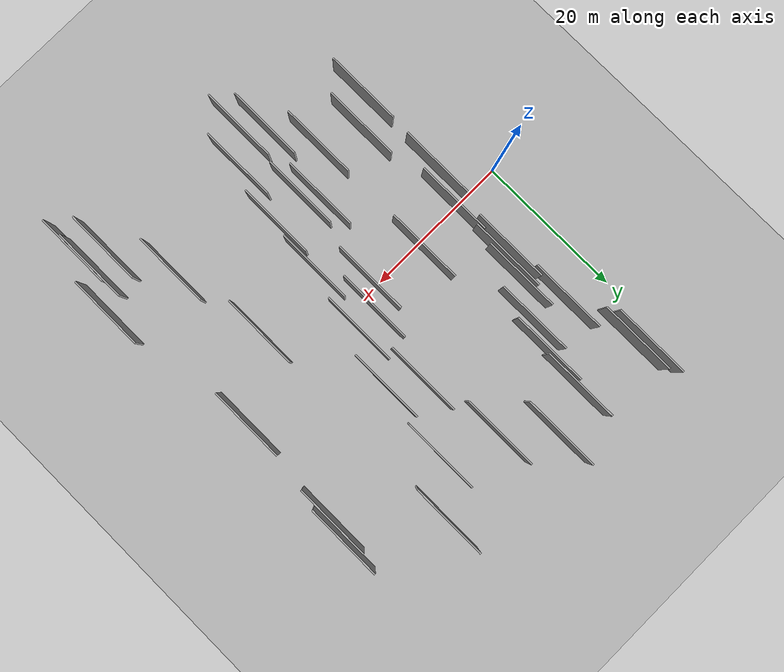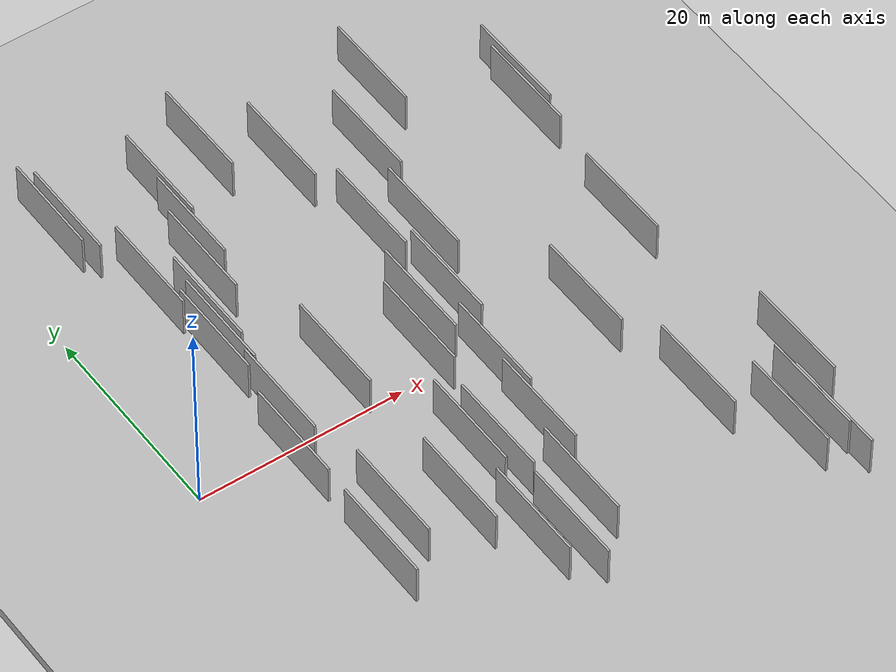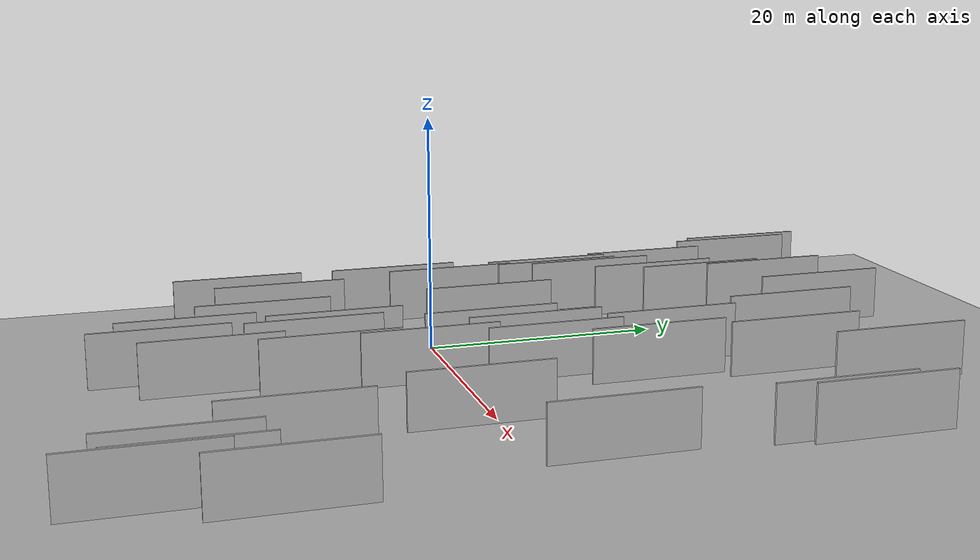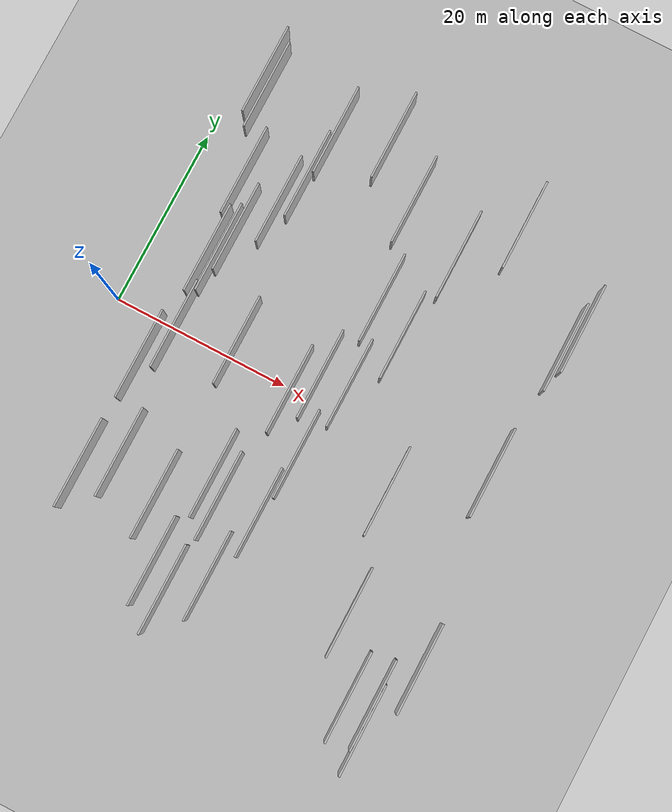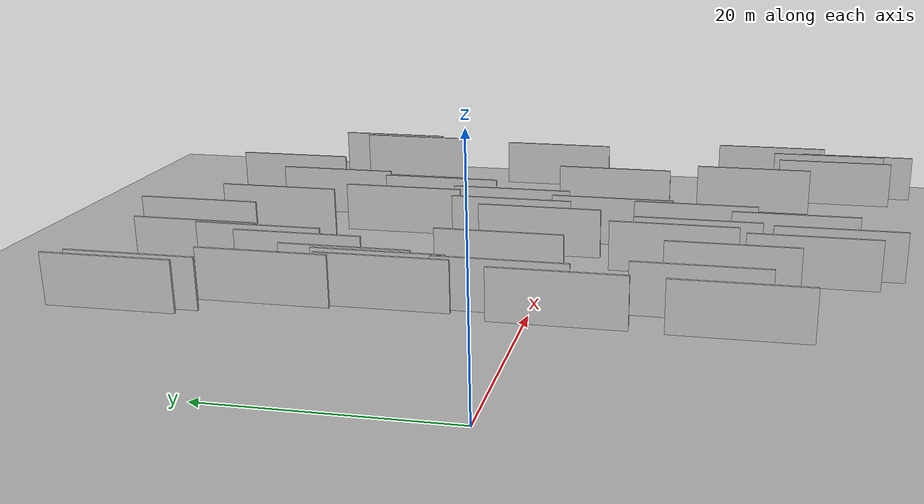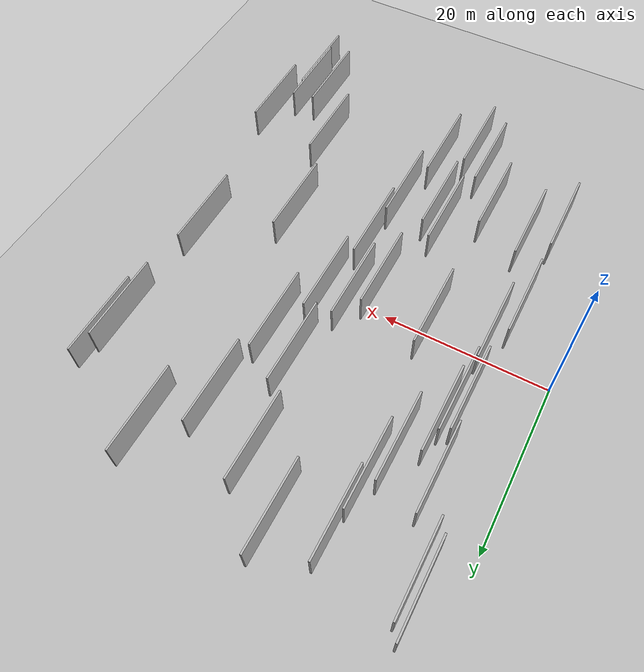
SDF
<?xml version="1.0" encoding="utf-8"?>

<sdf version="1.6">

   <world name="default">

      <gui fullscreen="0">

         <camera name="user_camera">

            <pose>-15 0 4.57585 0 0 0</pose>

            <view_controller>orbit</view_controller>

         </camera>

      </gui>

      <scene>

         <sky>

           <clouds>

             <speed>12</speed>

           </clouds>

         </sky>

         <ambient>0.4 0.4 0.4 1</ambient>

         <background>0.7 0.7 0.7 1</background>

         <shadows>1</shadows>

      </scene>

      <gravity>0 0 -9.8066</gravity>

      <magnetic_field>6e-06 2.3e-05 -4.2e-05</magnetic_field>

      <physics default="0" name="default_physics" type="ode">

         <ode>

            <solver>

               <type>quick</type>

               <iters>10</iters>

               <sor>1.0</sor>

               <use_dynamic_moi_rescaling>0</use_dynamic_moi_rescaling>

            </solver>

            <constraints>

               <cfm>0</cfm>

               <erp>0.2</erp>

               <contact_max_correcting_vel>100</contact_max_correcting_vel>

               <contact_surface_layer>0.001</contact_surface_layer>

            </constraints>

         </ode>

         <max_step_size>0.004</max_step_size>

         <real_time_factor>1</real_time_factor>

         <real_time_update_rate>250</real_time_update_rate>

      </physics>

      <light name="sun" type="directional">

         <cast_shadows>1</cast_shadows>

         <pose>0 0 10 0 0 0</pose>

         <diffuse>0.8 0.8 0.8 1</diffuse>

         <specular>0.2 0.2 0.2 1</specular>

         <attenuation>

            <range>1000</range>

            <constant>0.9</constant>

            <linear>0.01</linear>

            <quadratic>0.001</quadratic>

         </attenuation>

         <direction>-0.5 0.1 -0.9</direction>

      </light>

      <include>

         <name>ground_plane_1</name>

         <uri>model://HANNAS_ground_plane</uri>

         <pose>0 0 0  0 0 0</pose>

      </include>

      <include>

         <name>ground_plane_2</name>

         <uri>model://HANNAS_ground_plane</uri>

         <pose>100 0 0  0 0 0</pose>

      </include>

      <model name="HANNAS_wall_1">

         <static>1</static>

         <pose frame="">7.8358 -0.2921 5.0 0.000000 0.000000 1.570796</pose>

         <link name="link">

            <pose frame="">0 0 2.00 0 0 0</pose>

            <collision name="collision">

               <geometry>

                  <box>

                     <size>10.00 0.2 4.00</size>

                  </box>

               </geometry>

               <max_contacts>10</max_contacts>

               <surface>

                  <contact>

                     <ode/>

                  </contact>

                  <bounce/>

                  <friction>

                     <torsional>

                        <ode/>

                     </torsional>

                     <ode/>

                  </friction>

               </surface>

            </collision>

            <visual name="visual">

               <cast_shadows>0</cast_shadows>

               <geometry>

                  <box>

                     <size>10.00 0.2 4.00</size>

                  </box>

               </geometry>

               <material>

                  <script>

                     <uri>model://HANNAS_wall/materials/scripts</uri>

                     <uri>model://HANNAS_wall/materials/textures</uri>

                     <name>vrc/HANNAS_wall</name>

                  </script>

               </material>

            </visual>

            <self_collide>0</self_collide>

            <enable_wind>0</enable_wind>

            <kinematic>0</kinematic>

         </link>

      </model>

      <model name="HANNAS_wall_2">

         <static>1</static>

         <pose frame="">23.2628 2.0227 5.0 0.000000 0.000000 1.570796</pose>

         <link name="link">

            <pose frame="">0 0 2.00 0 0 0</pose>

            <collision name="collision">

               <geometry>

                  <box>

                     <size>10.00 0.2 4.00</size>

                  </box>

               </geometry>

               <max_contacts>10</max_contacts>

               <surface>

                  <contact>

                     <ode/>

                  </contact>

                  <bounce/>

                  <friction>

                     <torsional>

                        <ode/>

                     </torsional>

                     <ode/>

                  </friction>

               </surface>

            </collision>

            <visual name="visual">

               <cast_shadows>0</cast_shadows>

               <geometry>

                  <box>

                     <size>10.00 0.2 4.00</size>

                  </box>

               </geometry>

               <material>

                  <script>

                     <uri>model://HANNAS_wall/materials/scripts</uri>

                     <uri>model://HANNAS_wall/materials/textures</uri>

                     <name>vrc/HANNAS_wall</name>

                  </script>

               </material>

            </visual>

            <self_collide>0</self_collide>

            <enable_wind>0</enable_wind>

            <kinematic>0</kinematic>

         </link>

      </model>

      <model name="HANNAS_wall_3">

         <static>1</static>

         <pose frame="">43.1729 -24.5229 5.0 0.000000 0.000000 1.570796</pose>

         <link name="link">

            <pose frame="">0 0 2.00 0 0 0</pose>

            <collision name="collision">

               <geometry>

                  <box>

                     <size>10.00 0.2 4.00</size>

                  </box>

               </geometry>

               <max_contacts>10</max_contacts>

               <surface>

                  <contact>

                     <ode/>

                  </contact>

                  <bounce/>

                  <friction>

                     <torsional>

                        <ode/>

                     </torsional>

                     <ode/>

                  </friction>

               </surface>

            </collision>

            <visual name="visual">

               <cast_shadows>0</cast_shadows>

               <geometry>

                  <box>

                     <size>10.00 0.2 4.00</size>

                  </box>

               </geometry>

               <material>

                  <script>

                     <uri>model://HANNAS_wall/materials/scripts</uri>

                     <uri>model://HANNAS_wall/materials/textures</uri>

                     <name>vrc/HANNAS_wall</name>

                  </script>

               </material>

            </visual>

            <self_collide>0</self_collide>

            <enable_wind>0</enable_wind>

            <kinematic>0</kinematic>

         </link>

      </model>

      <model name="HANNAS_wall_4">

         <static>1</static>

         <pose frame="">6.6252 16.9107 5.0 0.000000 0.000000 1.570796</pose>

         <link name="link">

            <pose frame="">0 0 2.00 0 0 0</pose>

            <collision name="collision">

               <geometry>

                  <box>

                     <size>10.00 0.2 4.00</size>

                  </box>

               </geometry>

               <max_contacts>10</max_contacts>

               <surface>

                  <contact>

                     <ode/>

                  </contact>

                  <bounce/>

                  <friction>

                     <torsional>

                        <ode/>

                     </torsional>

                     <ode/>

                  </friction>

               </surface>

            </collision>

            <visual name="visual">

               <cast_shadows>0</cast_shadows>

               <geometry>

                  <box>

                     <size>10.00 0.2 4.00</size>

                  </box>

               </geometry>

               <material>

                  <script>

                     <uri>model://HANNAS_wall/materials/scripts</uri>

                     <uri>model://HANNAS_wall/materials/textures</uri>

                     <name>vrc/HANNAS_wall</name>

                  </script>

               </material>

            </visual>

            <self_collide>0</self_collide>

            <enable_wind>0</enable_wind>

            <kinematic>0</kinematic>

         </link>

      </model>

      <model name="HANNAS_wall_5">

         <static>1</static>

         <pose frame="">24.9010 -6.1716 5.0 0.000000 0.000000 1.570796</pose>

         <link name="link">

            <pose frame="">0 0 2.00 0 0 0</pose>

            <collision name="collision">

               <geometry>

                  <box>

                     <size>10.00 0.2 4.00</size>

                  </box>

               </geometry>

               <max_contacts>10</max_contacts>

               <surface>

                  <contact>

                     <ode/>

                  </contact>

                  <bounce/>

                  <friction>

                     <torsional>

                        <ode/>

                     </torsional>

                     <ode/>

                  </friction>

               </surface>

            </collision>

            <visual name="visual">

               <cast_shadows>0</cast_shadows>

               <geometry>

                  <box>

                     <size>10.00 0.2 4.00</size>

                  </box>

               </geometry>

               <material>

                  <script>

                     <uri>model://HANNAS_wall/materials/scripts</uri>

                     <uri>model://HANNAS_wall/materials/textures</uri>

                     <name>vrc/HANNAS_wall</name>

                  </script>

               </material>

            </visual>

            <self_collide>0</self_collide>

            <enable_wind>0</enable_wind>

            <kinematic>0</kinematic>

         </link>

      </model>

      <model name="HANNAS_wall_6">

         <static>1</static>

         <pose frame="">8.1049 8.6936 5.0 0.000000 0.000000 1.570796</pose>

         <link name="link">

            <pose frame="">0 0 2.00 0 0 0</pose>

            <collision name="collision">

               <geometry>

                  <box>

                     <size>10.00 0.2 4.00</size>

                  </box>

               </geometry>

               <max_contacts>10</max_contacts>

               <surface>

                  <contact>

                     <ode/>

                  </contact>

                  <bounce/>

                  <friction>

                     <torsional>

                        <ode/>

                     </torsional>

                     <ode/>

                  </friction>

               </surface>

            </collision>

            <visual name="visual">

               <cast_shadows>0</cast_shadows>

               <geometry>

                  <box>

                     <size>10.00 0.2 4.00</size>

                  </box>

               </geometry>

               <material>

                  <script>

                     <uri>model://HANNAS_wall/materials/scripts</uri>

                     <uri>model://HANNAS_wall/materials/textures</uri>

                     <name>vrc/HANNAS_wall</name>

                  </script>

               </material>

            </visual>

            <self_collide>0</self_collide>

            <enable_wind>0</enable_wind>

            <kinematic>0</kinematic>

         </link>

      </model>

      <model name="HANNAS_wall_7">

         <static>1</static>

         <pose frame="">14.2185 1.1450 5.0 0.000000 0.000000 1.570796</pose>

         <link name="link">

            <pose frame="">0 0 2.00 0 0 0</pose>

            <collision name="collision">

               <geometry>

                  <box>

                     <size>10.00 0.2 4.00</size>

                  </box>

               </geometry>

               <max_contacts>10</max_contacts>

               <surface>

                  <contact>

                     <ode/>

                  </contact>

                  <bounce/>

                  <friction>

                     <torsional>

                        <ode/>

                     </torsional>

                     <ode/>

                  </friction>

               </surface>

            </collision>

            <visual name="visual">

               <cast_shadows>0</cast_shadows>

               <geometry>

                  <box>

                     <size>10.00 0.2 4.00</size>

                  </box>

               </geometry>

               <material>

                  <script>

                     <uri>model://HANNAS_wall/materials/scripts</uri>

                     <uri>model://HANNAS_wall/materials/textures</uri>

                     <name>vrc/HANNAS_wall</name>

                  </script>

               </material>

            </visual>

            <self_collide>0</self_collide>

            <enable_wind>0</enable_wind>

            <kinematic>0</kinematic>

         </link>

      </model>

      <model name="HANNAS_wall_8">

         <static>1</static>

         <pose frame="">4.4644 25.9087 5.0 0.000000 0.000000 1.570796</pose>

         <link name="link">

            <pose frame="">0 0 2.00 0 0 0</pose>

            <collision name="collision">

               <geometry>

                  <box>

                     <size>10.00 0.2 4.00</size>

                  </box>

               </geometry>

               <max_contacts>10</max_contacts>

               <surface>

                  <contact>

                     <ode/>

                  </contact>

                  <bounce/>

                  <friction>

                     <torsional>

                        <ode/>

                     </torsional>

                     <ode/>

                  </friction>

               </surface>

            </collision>

            <visual name="visual">

               <cast_shadows>0</cast_shadows>

               <geometry>

                  <box>

                     <size>10.00 0.2 4.00</size>

                  </box>

               </geometry>

               <material>

                  <script>

                     <uri>model://HANNAS_wall/materials/scripts</uri>

                     <uri>model://HANNAS_wall/materials/textures</uri>

                     <name>vrc/HANNAS_wall</name>

                  </script>

               </material>

            </visual>

            <self_collide>0</self_collide>

            <enable_wind>0</enable_wind>

            <kinematic>0</kinematic>

         </link>

      </model>

      <model name="HANNAS_wall_9">

         <static>1</static>

         <pose frame="">43.0906 1.2742 5.0 0.000000 0.000000 1.570796</pose>

         <link name="link">

            <pose frame="">0 0 2.00 0 0 0</pose>

            <collision name="collision">

               <geometry>

                  <box>

                     <size>10.00 0.2 4.00</size>

                  </box>

               </geometry>

               <max_contacts>10</max_contacts>

               <surface>

                  <contact>

                     <ode/>

                  </contact>

                  <bounce/>

                  <friction>

                     <torsional>

                        <ode/>

                     </torsional>

                     <ode/>

                  </friction>

               </surface>

            </collision>

            <visual name="visual">

               <cast_shadows>0</cast_shadows>

               <geometry>

                  <box>

                     <size>10.00 0.2 4.00</size>

                  </box>

               </geometry>

               <material>

                  <script>

                     <uri>model://HANNAS_wall/materials/scripts</uri>

                     <uri>model://HANNAS_wall/materials/textures</uri>

                     <name>vrc/HANNAS_wall</name>

                  </script>

               </material>

            </visual>

            <self_collide>0</self_collide>

            <enable_wind>0</enable_wind>

            <kinematic>0</kinematic>

         </link>

      </model>

      <model name="HANNAS_wall_10">

         <static>1</static>

         <pose frame="">29.9802 19.3525 5.0 0.000000 0.000000 1.570796</pose>

         <link name="link">

            <pose frame="">0 0 2.00 0 0 0</pose>

            <collision name="collision">

               <geometry>

                  <box>

                     <size>10.00 0.2 4.00</size>

                  </box>

               </geometry>

               <max_contacts>10</max_contacts>

               <surface>

                  <contact>

                     <ode/>

                  </contact>

                  <bounce/>

                  <friction>

                     <torsional>

                        <ode/>

                     </torsional>

                     <ode/>

                  </friction>

               </surface>

            </collision>

            <visual name="visual">

               <cast_shadows>0</cast_shadows>

               <geometry>

                  <box>

                     <size>10.00 0.2 4.00</size>

                  </box>

               </geometry>

               <material>

                  <script>

                     <uri>model://HANNAS_wall/materials/scripts</uri>

                     <uri>model://HANNAS_wall/materials/textures</uri>

                     <name>vrc/HANNAS_wall</name>

                  </script>

               </material>

            </visual>

            <self_collide>0</self_collide>

            <enable_wind>0</enable_wind>

            <kinematic>0</kinematic>

         </link>

      </model>

      <model name="HANNAS_wall_11">

         <static>1</static>

         <pose frame="">40.6441 -24.9664 5.0 0.000000 0.000000 1.570796</pose>

         <link name="link">

            <pose frame="">0 0 2.00 0 0 0</pose>

            <collision name="collision">

               <geometry>

                  <box>

                     <size>10.00 0.2 4.00</size>

                  </box>

               </geometry>

               <max_contacts>10</max_contacts>

               <surface>

                  <contact>

                     <ode/>

                  </contact>

                  <bounce/>

                  <friction>

                     <torsional>

                        <ode/>

                     </torsional>

                     <ode/>

                  </friction>

               </surface>

            </collision>

            <visual name="visual">

               <cast_shadows>0</cast_shadows>

               <geometry>

                  <box>

                     <size>10.00 0.2 4.00</size>

                  </box>

               </geometry>

               <material>

                  <script>

                     <uri>model://HANNAS_wall/materials/scripts</uri>

                     <uri>model://HANNAS_wall/materials/textures</uri>

                     <name>vrc/HANNAS_wall</name>

                  </script>

               </material>

            </visual>

            <self_collide>0</self_collide>

            <enable_wind>0</enable_wind>

            <kinematic>0</kinematic>

         </link>

      </model>

      <model name="HANNAS_wall_12">

         <static>1</static>

         <pose frame="">6.0646 -17.0573 5.0 0.000000 0.000000 1.570796</pose>

         <link name="link">

            <pose frame="">0 0 2.00 0 0 0</pose>

            <collision name="collision">

               <geometry>

                  <box>

                     <size>10.00 0.2 4.00</size>

                  </box>

               </geometry>

               <max_contacts>10</max_contacts>

               <surface>

                  <contact>

                     <ode/>

                  </contact>

                  <bounce/>

                  <friction>

                     <torsional>

                        <ode/>

                     </torsional>

                     <ode/>

                  </friction>

               </surface>

            </collision>

            <visual name="visual">

               <cast_shadows>0</cast_shadows>

               <geometry>

                  <box>

                     <size>10.00 0.2 4.00</size>

                  </box>

               </geometry>

               <material>

                  <script>

                     <uri>model://HANNAS_wall/materials/scripts</uri>

                     <uri>model://HANNAS_wall/materials/textures</uri>

                     <name>vrc/HANNAS_wall</name>

                  </script>

               </material>

            </visual>

            <self_collide>0</self_collide>

            <enable_wind>0</enable_wind>

            <kinematic>0</kinematic>

         </link>

      </model>

      <model name="HANNAS_wall_13">

         <static>1</static>

         <pose frame="">26.2905 2.5924 5.0 0.000000 0.000000 1.570796</pose>

         <link name="link">

            <pose frame="">0 0 2.00 0 0 0</pose>

            <collision name="collision">

               <geometry>

                  <box>

                     <size>10.00 0.2 4.00</size>

                  </box>

               </geometry>

               <max_contacts>10</max_contacts>

               <surface>

                  <contact>

                     <ode/>

                  </contact>

                  <bounce/>

                  <friction>

                     <torsional>

                        <ode/>

                     </torsional>

                     <ode/>

                  </friction>

               </surface>

            </collision>

            <visual name="visual">

               <cast_shadows>0</cast_shadows>

               <geometry>

                  <box>

                     <size>10.00 0.2 4.00</size>

                  </box>

               </geometry>

               <material>

                  <script>

                     <uri>model://HANNAS_wall/materials/scripts</uri>

                     <uri>model://HANNAS_wall/materials/textures</uri>

                     <name>vrc/HANNAS_wall</name>

                  </script>

               </material>

            </visual>

            <self_collide>0</self_collide>

            <enable_wind>0</enable_wind>

            <kinematic>0</kinematic>

         </link>

      </model>

      <model name="HANNAS_wall_14">

         <static>1</static>

         <pose frame="">14.2604 -16.2750 5.0 0.000000 0.000000 1.570796</pose>

         <link name="link">

            <pose frame="">0 0 2.00 0 0 0</pose>

            <collision name="collision">

               <geometry>

                  <box>

                     <size>10.00 0.2 4.00</size>

                  </box>

               </geometry>

               <max_contacts>10</max_contacts>

               <surface>

                  <contact>

                     <ode/>

                  </contact>

                  <bounce/>

                  <friction>

                     <torsional>

                        <ode/>

                     </torsional>

                     <ode/>

                  </friction>

               </surface>

            </collision>

            <visual name="visual">

               <cast_shadows>0</cast_shadows>

               <geometry>

                  <box>

                     <size>10.00 0.2 4.00</size>

                  </box>

               </geometry>

               <material>

                  <script>

                     <uri>model://HANNAS_wall/materials/scripts</uri>

                     <uri>model://HANNAS_wall/materials/textures</uri>

                     <name>vrc/HANNAS_wall</name>

                  </script>

               </material>

            </visual>

            <self_collide>0</self_collide>

            <enable_wind>0</enable_wind>

            <kinematic>0</kinematic>

         </link>

      </model>

      <model name="HANNAS_wall_15">

         <static>1</static>

         <pose frame="">34.6566 -5.2586 5.0 0.000000 0.000000 1.570796</pose>

         <link name="link">

            <pose frame="">0 0 2.00 0 0 0</pose>

            <collision name="collision">

               <geometry>

                  <box>

                     <size>10.00 0.2 4.00</size>

                  </box>

               </geometry>

               <max_contacts>10</max_contacts>

               <surface>

                  <contact>

                     <ode/>

                  </contact>

                  <bounce/>

                  <friction>

                     <torsional>

                        <ode/>

                     </torsional>

                     <ode/>

                  </friction>

               </surface>

            </collision>

            <visual name="visual">

               <cast_shadows>0</cast_shadows>

               <geometry>

                  <box>

                     <size>10.00 0.2 4.00</size>

                  </box>

               </geometry>

               <material>

                  <script>

                     <uri>model://HANNAS_wall/materials/scripts</uri>

                     <uri>model://HANNAS_wall/materials/textures</uri>

                     <name>vrc/HANNAS_wall</name>

                  </script>

               </material>

            </visual>

            <self_collide>0</self_collide>

            <enable_wind>0</enable_wind>

            <kinematic>0</kinematic>

         </link>

      </model>

      <model name="HANNAS_wall_16">

         <static>1</static>

         <pose frame="">25.1661 11.7924 5.0 0.000000 0.000000 1.570796</pose>

         <link name="link">

            <pose frame="">0 0 2.00 0 0 0</pose>

            <collision name="collision">

               <geometry>

                  <box>

                     <size>10.00 0.2 4.00</size>

                  </box>

               </geometry>

               <max_contacts>10</max_contacts>

               <surface>

                  <contact>

                     <ode/>

                  </contact>

                  <bounce/>

                  <friction>

                     <torsional>

                        <ode/>

                     </torsional>

                     <ode/>

                  </friction>

               </surface>

            </collision>

            <visual name="visual">

               <cast_shadows>0</cast_shadows>

               <geometry>

                  <box>

                     <size>10.00 0.2 4.00</size>

                  </box>

               </geometry>

               <material>

                  <script>

                     <uri>model://HANNAS_wall/materials/scripts</uri>

                     <uri>model://HANNAS_wall/materials/textures</uri>

                     <name>vrc/HANNAS_wall</name>

                  </script>

               </material>

            </visual>

            <self_collide>0</self_collide>

            <enable_wind>0</enable_wind>

            <kinematic>0</kinematic>

         </link>

      </model>

      <model name="HANNAS_wall_17">

         <static>1</static>

         <pose frame="">45.6332 -19.2665 5.0 0.000000 0.000000 1.570796</pose>

         <link name="link">

            <pose frame="">0 0 2.00 0 0 0</pose>

            <collision name="collision">

               <geometry>

                  <box>

                     <size>10.00 0.2 4.00</size>

                  </box>

               </geometry>

               <max_contacts>10</max_contacts>

               <surface>

                  <contact>

                     <ode/>

                  </contact>

                  <bounce/>

                  <friction>

                     <torsional>

                        <ode/>

                     </torsional>

                     <ode/>

                  </friction>

               </surface>

            </collision>

            <visual name="visual">

               <cast_shadows>0</cast_shadows>

               <geometry>

                  <box>

                     <size>10.00 0.2 4.00</size>

                  </box>

               </geometry>

               <material>

                  <script>

                     <uri>model://HANNAS_wall/materials/scripts</uri>

                     <uri>model://HANNAS_wall/materials/textures</uri>

                     <name>vrc/HANNAS_wall</name>

                  </script>

               </material>

            </visual>

            <self_collide>0</self_collide>

            <enable_wind>0</enable_wind>

            <kinematic>0</kinematic>

         </link>

      </model>

      <model name="HANNAS_wall_18">

         <static>1</static>

         <pose frame="">21.2283 -0.7089 5.0 0.000000 0.000000 1.570796</pose>

         <link name="link">

            <pose frame="">0 0 2.00 0 0 0</pose>

            <collision name="collision">

               <geometry>

                  <box>

                     <size>10.00 0.2 4.00</size>

                  </box>

               </geometry>

               <max_contacts>10</max_contacts>

               <surface>

                  <contact>

                     <ode/>

                  </contact>

                  <bounce/>

                  <friction>

                     <torsional>

                        <ode/>

                     </torsional>

                     <ode/>

                  </friction>

               </surface>

            </collision>

            <visual name="visual">

               <cast_shadows>0</cast_shadows>

               <geometry>

                  <box>

                     <size>10.00 0.2 4.00</size>

                  </box>

               </geometry>

               <material>

                  <script>

                     <uri>model://HANNAS_wall/materials/scripts</uri>

                     <uri>model://HANNAS_wall/materials/textures</uri>

                     <name>vrc/HANNAS_wall</name>

                  </script>

               </material>

            </visual>

            <self_collide>0</self_collide>

            <enable_wind>0</enable_wind>

            <kinematic>0</kinematic>

         </link>

      </model>

      <model name="HANNAS_wall_19">

         <static>1</static>

         <pose frame="">3.5937 27.2462 5.0 0.000000 0.000000 1.570796</pose>

         <link name="link">

            <pose frame="">0 0 2.00 0 0 0</pose>

            <collision name="collision">

               <geometry>

                  <box>

                     <size>10.00 0.2 4.00</size>

                  </box>

               </geometry>

               <max_contacts>10</max_contacts>

               <surface>

                  <contact>

                     <ode/>

                  </contact>

                  <bounce/>

                  <friction>

                     <torsional>

                        <ode/>

                     </torsional>

                     <ode/>

                  </friction>

               </surface>

            </collision>

            <visual name="visual">

               <cast_shadows>0</cast_shadows>

               <geometry>

                  <box>

                     <size>10.00 0.2 4.00</size>

                  </box>

               </geometry>

               <material>

                  <script>

                     <uri>model://HANNAS_wall/materials/scripts</uri>

                     <uri>model://HANNAS_wall/materials/textures</uri>

                     <name>vrc/HANNAS_wall</name>

                  </script>

               </material>

            </visual>

            <self_collide>0</self_collide>

            <enable_wind>0</enable_wind>

            <kinematic>0</kinematic>

         </link>

      </model>

      <model name="HANNAS_wall_20">

         <static>1</static>

         <pose frame="">43.8578 15.9198 5.0 0.000000 0.000000 1.570796</pose>

         <link name="link">

            <pose frame="">0 0 2.00 0 0 0</pose>

            <collision name="collision">

               <geometry>

                  <box>

                     <size>10.00 0.2 4.00</size>

                  </box>

               </geometry>

               <max_contacts>10</max_contacts>

               <surface>

                  <contact>

                     <ode/>

                  </contact>

                  <bounce/>

                  <friction>

                     <torsional>

                        <ode/>

                     </torsional>

                     <ode/>

                  </friction>

               </surface>

            </collision>

            <visual name="visual">

               <cast_shadows>0</cast_shadows>

               <geometry>

                  <box>

                     <size>10.00 0.2 4.00</size>

                  </box>

               </geometry>

               <material>

                  <script>

                     <uri>model://HANNAS_wall/materials/scripts</uri>

                     <uri>model://HANNAS_wall/materials/textures</uri>

                     <name>vrc/HANNAS_wall</name>

                  </script>

               </material>

            </visual>

            <self_collide>0</self_collide>

            <enable_wind>0</enable_wind>

            <kinematic>0</kinematic>

         </link>

      </model>

      <model name="HANNAS_wall_21">

         <static>1</static>

         <pose frame="">6.1931 -4.6150 5.0 0.000000 0.000000 1.570796</pose>

         <link name="link">

            <pose frame="">0 0 2.00 0 0 0</pose>

            <collision name="collision">

               <geometry>

                  <box>

                     <size>10.00 0.2 4.00</size>

                  </box>

               </geometry>

               <max_contacts>10</max_contacts>

               <surface>

                  <contact>

                     <ode/>

                  </contact>

                  <bounce/>

                  <friction>

                     <torsional>

                        <ode/>

                     </torsional>

                     <ode/>

                  </friction>

               </surface>

            </collision>

            <visual name="visual">

               <cast_shadows>0</cast_shadows>

               <geometry>

                  <box>

                     <size>10.00 0.2 4.00</size>

                  </box>

               </geometry>

               <material>

                  <script>

                     <uri>model://HANNAS_wall/materials/scripts</uri>

                     <uri>model://HANNAS_wall/materials/textures</uri>

                     <name>vrc/HANNAS_wall</name>

                  </script>

               </material>

            </visual>

            <self_collide>0</self_collide>

            <enable_wind>0</enable_wind>

            <kinematic>0</kinematic>

         </link>

      </model>

      <model name="HANNAS_wall_22">

         <static>1</static>

         <pose frame="">18.4472 27.2551 5.0 0.000000 0.000000 1.570796</pose>

         <link name="link">

            <pose frame="">0 0 2.00 0 0 0</pose>

            <collision name="collision">

               <geometry>

                  <box>

                     <size>10.00 0.2 4.00</size>

                  </box>

               </geometry>

               <max_contacts>10</max_contacts>

               <surface>

                  <contact>

                     <ode/>

                  </contact>

                  <bounce/>

                  <friction>

                     <torsional>

                        <ode/>

                     </torsional>

                     <ode/>

                  </friction>

               </surface>

            </collision>

            <visual name="visual">

               <cast_shadows>0</cast_shadows>

               <geometry>

                  <box>

                     <size>10.00 0.2 4.00</size>

                  </box>

               </geometry>

               <material>

                  <script>

                     <uri>model://HANNAS_wall/materials/scripts</uri>

                     <uri>model://HANNAS_wall/materials/textures</uri>

                     <name>vrc/HANNAS_wall</name>

                  </script>

               </material>

            </visual>

            <self_collide>0</self_collide>

            <enable_wind>0</enable_wind>

            <kinematic>0</kinematic>

         </link>

      </model>

      <model name="HANNAS_wall_23">

         <static>1</static>

         <pose frame="">43.3789 -27.1356 5.0 0.000000 0.000000 1.570796</pose>

         <link name="link">

            <pose frame="">0 0 2.00 0 0 0</pose>

            <collision name="collision">

               <geometry>

                  <box>

                     <size>10.00 0.2 4.00</size>

                  </box>

               </geometry>

               <max_contacts>10</max_contacts>

               <surface>

                  <contact>

                     <ode/>

                  </contact>

                  <bounce/>

                  <friction>

                     <torsional>

                        <ode/>

                     </torsional>

                     <ode/>

                  </friction>

               </surface>

            </collision>

            <visual name="visual">

               <cast_shadows>0</cast_shadows>

               <geometry>

                  <box>

                     <size>10.00 0.2 4.00</size>

                  </box>

               </geometry>

               <material>

                  <script>

                     <uri>model://HANNAS_wall/materials/scripts</uri>

                     <uri>model://HANNAS_wall/materials/textures</uri>

                     <name>vrc/HANNAS_wall</name>

                  </script>

               </material>

            </visual>

            <self_collide>0</self_collide>

            <enable_wind>0</enable_wind>

            <kinematic>0</kinematic>

         </link>

      </model>

      <model name="HANNAS_wall_24">

         <static>1</static>

         <pose frame="">23.3502 22.2970 5.0 0.000000 0.000000 1.570796</pose>

         <link name="link">

            <pose frame="">0 0 2.00 0 0 0</pose>

            <collision name="collision">

               <geometry>

                  <box>

                     <size>10.00 0.2 4.00</size>

                  </box>

               </geometry>

               <max_contacts>10</max_contacts>

               <surface>

                  <contact>

                     <ode/>

                  </contact>

                  <bounce/>

                  <friction>

                     <torsional>

                        <ode/>

                     </torsional>

                     <ode/>

                  </friction>

               </surface>

            </collision>

            <visual name="visual">

               <cast_shadows>0</cast_shadows>

               <geometry>

                  <box>

                     <size>10.00 0.2 4.00</size>

                  </box>

               </geometry>

               <material>

                  <script>

                     <uri>model://HANNAS_wall/materials/scripts</uri>

                     <uri>model://HANNAS_wall/materials/textures</uri>

                     <name>vrc/HANNAS_wall</name>

                  </script>

               </material>

            </visual>

            <self_collide>0</self_collide>

            <enable_wind>0</enable_wind>

            <kinematic>0</kinematic>

         </link>

      </model>

      <model name="HANNAS_wall_25">

         <static>1</static>

         <pose frame="">9.1776 -14.2394 5.0 0.000000 0.000000 1.570796</pose>

         <link name="link">

            <pose frame="">0 0 2.00 0 0 0</pose>

            <collision name="collision">

               <geometry>

                  <box>

                     <size>10.00 0.2 4.00</size>

                  </box>

               </geometry>

               <max_contacts>10</max_contacts>

               <surface>

                  <contact>

                     <ode/>

                  </contact>

                  <bounce/>

                  <friction>

                     <torsional>

                        <ode/>

                     </torsional>

                     <ode/>

                  </friction>

               </surface>

            </collision>

            <visual name="visual">

               <cast_shadows>0</cast_shadows>

               <geometry>

                  <box>

                     <size>10.00 0.2 4.00</size>

                  </box>

               </geometry>

               <material>

                  <script>

                     <uri>model://HANNAS_wall/materials/scripts</uri>

                     <uri>model://HANNAS_wall/materials/textures</uri>

                     <name>vrc/HANNAS_wall</name>

                  </script>

               </material>

            </visual>

            <self_collide>0</self_collide>

            <enable_wind>0</enable_wind>

            <kinematic>0</kinematic>

         </link>

      </model>

      <model name="HANNAS_wall_26">

         <static>1</static>

         <pose frame="">8.6530 11.3725 5.0 0.000000 0.000000 1.570796</pose>

         <link name="link">

            <pose frame="">0 0 2.00 0 0 0</pose>

            <collision name="collision">

               <geometry>

                  <box>

                     <size>10.00 0.2 4.00</size>

                  </box>

               </geometry>

               <max_contacts>10</max_contacts>

               <surface>

                  <contact>

                     <ode/>

                  </contact>

                  <bounce/>

                  <friction>

                     <torsional>

                        <ode/>

                     </torsional>

                     <ode/>

                  </friction>

               </surface>

            </collision>

            <visual name="visual">

               <cast_shadows>0</cast_shadows>

               <geometry>

                  <box>

                     <size>10.00 0.2 4.00</size>

                  </box>

               </geometry>

               <material>

                  <script>

                     <uri>model://HANNAS_wall/materials/scripts</uri>

                     <uri>model://HANNAS_wall/materials/textures</uri>

                     <name>vrc/HANNAS_wall</name>

                  </script>

               </material>

            </visual>

            <self_collide>0</self_collide>

            <enable_wind>0</enable_wind>

            <kinematic>0</kinematic>

         </link>

      </model>

      <model name="HANNAS_wall_27">

         <static>1</static>

         <pose frame="">17.1920 -22.2053 5.0 0.000000 0.000000 1.570796</pose>

         <link name="link">

            <pose frame="">0 0 2.00 0 0 0</pose>

            <collision name="collision">

               <geometry>

                  <box>

                     <size>10.00 0.2 4.00</size>

                  </box>

               </geometry>

               <max_contacts>10</max_contacts>

               <surface>

                  <contact>

                     <ode/>

                  </contact>

                  <bounce/>

                  <friction>

                     <torsional>

                        <ode/>

                     </torsional>

                     <ode/>

                  </friction>

               </surface>

            </collision>

            <visual name="visual">

               <cast_shadows>0</cast_shadows>

               <geometry>

                  <box>

                     <size>10.00 0.2 4.00</size>

                  </box>

               </geometry>

               <material>

                  <script>

                     <uri>model://HANNAS_wall/materials/scripts</uri>

                     <uri>model://HANNAS_wall/materials/textures</uri>

                     <name>vrc/HANNAS_wall</name>

                  </script>

               </material>

            </visual>

            <self_collide>0</self_collide>

            <enable_wind>0</enable_wind>

            <kinematic>0</kinematic>

         </link>

      </model>

      <model name="HANNAS_wall_28">

         <static>1</static>

         <pose frame="">12.5166 19.6094 5.0 0.000000 0.000000 1.570796</pose>

         <link name="link">

            <pose frame="">0 0 2.00 0 0 0</pose>

            <collision name="collision">

               <geometry>

                  <box>

                     <size>10.00 0.2 4.00</size>

                  </box>

               </geometry>

               <max_contacts>10</max_contacts>

               <surface>

                  <contact>

                     <ode/>

                  </contact>

                  <bounce/>

                  <friction>

                     <torsional>

                        <ode/>

                     </torsional>

                     <ode/>

                  </friction>

               </surface>

            </collision>

            <visual name="visual">

               <cast_shadows>0</cast_shadows>

               <geometry>

                  <box>

                     <size>10.00 0.2 4.00</size>

                  </box>

               </geometry>

               <material>

                  <script>

                     <uri>model://HANNAS_wall/materials/scripts</uri>

                     <uri>model://HANNAS_wall/materials/textures</uri>

                     <name>vrc/HANNAS_wall</name>

                  </script>

               </material>

            </visual>

            <self_collide>0</self_collide>

            <enable_wind>0</enable_wind>

            <kinematic>0</kinematic>

         </link>

      </model>

      <model name="HANNAS_wall_29">

         <static>1</static>

         <pose frame="">36.8890 -17.6024 5.0 0.000000 0.000000 1.570796</pose>

         <link name="link">

            <pose frame="">0 0 2.00 0 0 0</pose>

            <collision name="collision">

               <geometry>

                  <box>

                     <size>10.00 0.2 4.00</size>

                  </box>

               </geometry>

               <max_contacts>10</max_contacts>

               <surface>

                  <contact>

                     <ode/>

                  </contact>

                  <bounce/>

                  <friction>

                     <torsional>

                        <ode/>

                     </torsional>

                     <ode/>

                  </friction>

               </surface>

            </collision>

            <visual name="visual">

               <cast_shadows>0</cast_shadows>

               <geometry>

                  <box>

                     <size>10.00 0.2 4.00</size>

                  </box>

               </geometry>

               <material>

                  <script>

                     <uri>model://HANNAS_wall/materials/scripts</uri>

                     <uri>model://HANNAS_wall/materials/textures</uri>

                     <name>vrc/HANNAS_wall</name>

                  </script>

               </material>

            </visual>

            <self_collide>0</self_collide>

            <enable_wind>0</enable_wind>

            <kinematic>0</kinematic>

         </link>

      </model>

      <model name="HANNAS_wall_30">

         <static>1</static>

         <pose frame="">19.9783 -13.4607 5.0 0.000000 0.000000 1.570796</pose>

         <link name="link">

            <pose frame="">0 0 2.00 0 0 0</pose>

            <collision name="collision">

               <geometry>

                  <box>

                     <size>10.00 0.2 4.00</size>

                  </box>

               </geometry>

               <max_contacts>10</max_contacts>

               <surface>

                  <contact>

                     <ode/>

                  </contact>

                  <bounce/>

                  <friction>

                     <torsional>

                        <ode/>

                     </torsional>

                     <ode/>

                  </friction>

               </surface>

            </collision>

            <visual name="visual">

               <cast_shadows>0</cast_shadows>

               <geometry>

                  <box>

                     <size>10.00 0.2 4.00</size>

                  </box>

               </geometry>

               <material>

                  <script>

                     <uri>model://HANNAS_wall/materials/scripts</uri>

                     <uri>model://HANNAS_wall/materials/textures</uri>

                     <name>vrc/HANNAS_wall</name>

                  </script>

               </material>

            </visual>

            <self_collide>0</self_collide>

            <enable_wind>0</enable_wind>

            <kinematic>0</kinematic>

         </link>

      </model>

      <model name="HANNAS_wall_31">

         <static>1</static>

         <pose frame="">28.7470 9.3979 5.0 0.000000 0.000000 1.570796</pose>

         <link name="link">

            <pose frame="">0 0 2.00 0 0 0</pose>

            <collision name="collision">

               <geometry>

                  <box>

                     <size>10.00 0.2 4.00</size>

                  </box>

               </geometry>

               <max_contacts>10</max_contacts>

               <surface>

                  <contact>

                     <ode/>

                  </contact>

                  <bounce/>

                  <friction>

                     <torsional>

                        <ode/>

                     </torsional>

                     <ode/>

                  </friction>

               </surface>

            </collision>

            <visual name="visual">

               <cast_shadows>0</cast_shadows>

               <geometry>

                  <box>

                     <size>10.00 0.2 4.00</size>

                  </box>

               </geometry>

               <material>

                  <script>

                     <uri>model://HANNAS_wall/materials/scripts</uri>

                     <uri>model://HANNAS_wall/materials/textures</uri>

                     <name>vrc/HANNAS_wall</name>

                  </script>

               </material>

            </visual>

            <self_collide>0</self_collide>

            <enable_wind>0</enable_wind>

            <kinematic>0</kinematic>

         </link>

      </model>

      <model name="HANNAS_wall_32">

         <static>1</static>

         <pose frame="">12.9572 24.9855 5.0 0.000000 0.000000 1.570796</pose>

         <link name="link">

            <pose frame="">0 0 2.00 0 0 0</pose>

            <collision name="collision">

               <geometry>

                  <box>

                     <size>10.00 0.2 4.00</size>

                  </box>

               </geometry>

               <max_contacts>10</max_contacts>

               <surface>

                  <contact>

                     <ode/>

                  </contact>

                  <bounce/>

                  <friction>

                     <torsional>

                        <ode/>

                     </torsional>

                     <ode/>

                  </friction>

               </surface>

            </collision>

            <visual name="visual">

               <cast_shadows>0</cast_shadows>

               <geometry>

                  <box>

                     <size>10.00 0.2 4.00</size>

                  </box>

               </geometry>

               <material>

                  <script>

                     <uri>model://HANNAS_wall/materials/scripts</uri>

                     <uri>model://HANNAS_wall/materials/textures</uri>

                     <name>vrc/HANNAS_wall</name>

                  </script>

               </material>

            </visual>

            <self_collide>0</self_collide>

            <enable_wind>0</enable_wind>

            <kinematic>0</kinematic>

         </link>

      </model>

      <model name="HANNAS_wall_33">

         <static>1</static>

         <pose frame="">18.4549 -11.7194 5.0 0.000000 0.000000 1.570796</pose>

         <link name="link">

            <pose frame="">0 0 2.00 0 0 0</pose>

            <collision name="collision">

               <geometry>

                  <box>

                     <size>10.00 0.2 4.00</size>

                  </box>

               </geometry>

               <max_contacts>10</max_contacts>

               <surface>

                  <contact>

                     <ode/>

                  </contact>

                  <bounce/>

                  <friction>

                     <torsional>

                        <ode/>

                     </torsional>

                     <ode/>

                  </friction>

               </surface>

            </collision>

            <visual name="visual">

               <cast_shadows>0</cast_shadows>

               <geometry>

                  <box>

                     <size>10.00 0.2 4.00</size>

                  </box>

               </geometry>

               <material>

                  <script>

                     <uri>model://HANNAS_wall/materials/scripts</uri>

                     <uri>model://HANNAS_wall/materials/textures</uri>

                     <name>vrc/HANNAS_wall</name>

                  </script>

               </material>

            </visual>

            <self_collide>0</self_collide>

            <enable_wind>0</enable_wind>

            <kinematic>0</kinematic>

         </link>

      </model>

      <model name="HANNAS_wall_34">

         <static>1</static>

         <pose frame="">7.1256 8.1168 5.0 0.000000 0.000000 1.570796</pose>

         <link name="link">

            <pose frame="">0 0 2.00 0 0 0</pose>

            <collision name="collision">

               <geometry>

                  <box>

                     <size>10.00 0.2 4.00</size>

                  </box>

               </geometry>

               <max_contacts>10</max_contacts>

               <surface>

                  <contact>

                     <ode/>

                  </contact>

                  <bounce/>

                  <friction>

                     <torsional>

                        <ode/>

                     </torsional>

                     <ode/>

                  </friction>

               </surface>

            </collision>

            <visual name="visual">

               <cast_shadows>0</cast_shadows>

               <geometry>

                  <box>

                     <size>10.00 0.2 4.00</size>

                  </box>

               </geometry>

               <material>

                  <script>

                     <uri>model://HANNAS_wall/materials/scripts</uri>

                     <uri>model://HANNAS_wall/materials/textures</uri>

                     <name>vrc/HANNAS_wall</name>

                  </script>

               </material>

            </visual>

            <self_collide>0</self_collide>

            <enable_wind>0</enable_wind>

            <kinematic>0</kinematic>

         </link>

      </model>

      <model name="HANNAS_wall_35">

         <static>1</static>

         <pose frame="">24.3331 -13.0794 5.0 0.000000 0.000000 1.570796</pose>

         <link name="link">

            <pose frame="">0 0 2.00 0 0 0</pose>

            <collision name="collision">

               <geometry>

                  <box>

                     <size>10.00 0.2 4.00</size>

                  </box>

               </geometry>

               <max_contacts>10</max_contacts>

               <surface>

                  <contact>

                     <ode/>

                  </contact>

                  <bounce/>

                  <friction>

                     <torsional>

                        <ode/>

                     </torsional>

                     <ode/>

                  </friction>

               </surface>

            </collision>

            <visual name="visual">

               <cast_shadows>0</cast_shadows>

               <geometry>

                  <box>

                     <size>10.00 0.2 4.00</size>

                  </box>

               </geometry>

               <material>

                  <script>

                     <uri>model://HANNAS_wall/materials/scripts</uri>

                     <uri>model://HANNAS_wall/materials/textures</uri>

                     <name>vrc/HANNAS_wall</name>

                  </script>

               </material>

            </visual>

            <self_collide>0</self_collide>

            <enable_wind>0</enable_wind>

            <kinematic>0</kinematic>

         </link>

      </model>

      <model name="HANNAS_wall_36">

         <static>1</static>

         <pose frame="">34.5134 25.1608 5.0 0.000000 0.000000 1.570796</pose>

         <link name="link">

            <pose frame="">0 0 2.00 0 0 0</pose>

            <collision name="collision">

               <geometry>

                  <box>

                     <size>10.00 0.2 4.00</size>

                  </box>

               </geometry>

               <max_contacts>10</max_contacts>

               <surface>

                  <contact>

                     <ode/>

                  </contact>

                  <bounce/>

                  <friction>

                     <torsional>

                        <ode/>

                     </torsional>

                     <ode/>

                  </friction>

               </surface>

            </collision>

            <visual name="visual">

               <cast_shadows>0</cast_shadows>

               <geometry>

                  <box>

                     <size>10.00 0.2 4.00</size>

                  </box>

               </geometry>

               <material>

                  <script>

                     <uri>model://HANNAS_wall/materials/scripts</uri>

                     <uri>model://HANNAS_wall/materials/textures</uri>

                     <name>vrc/HANNAS_wall</name>

                  </script>

               </material>

            </visual>

            <self_collide>0</self_collide>

            <enable_wind>0</enable_wind>

            <kinematic>0</kinematic>

         </link>

      </model>

      <model name="HANNAS_wall_37">

         <static>1</static>

         <pose frame="">44.5259 18.3934 5.0 0.000000 0.000000 1.570796</pose>

         <link name="link">

            <pose frame="">0 0 2.00 0 0 0</pose>

            <collision name="collision">

               <geometry>

                  <box>

                     <size>10.00 0.2 4.00</size>

                  </box>

               </geometry>

               <max_contacts>10</max_contacts>

               <surface>

                  <contact>

                     <ode/>

                  </contact>

                  <bounce/>

                  <friction>

                     <torsional>

                        <ode/>

                     </torsional>

                     <ode/>

                  </friction>

               </surface>

            </collision>

            <visual name="visual">

               <cast_shadows>0</cast_shadows>

               <geometry>

                  <box>

                     <size>10.00 0.2 4.00</size>

                  </box>

               </geometry>

               <material>

                  <script>

                     <uri>model://HANNAS_wall/materials/scripts</uri>

                     <uri>model://HANNAS_wall/materials/textures</uri>

                     <name>vrc/HANNAS_wall</name>

                  </script>

               </material>

            </visual>

            <self_collide>0</self_collide>

            <enable_wind>0</enable_wind>

            <kinematic>0</kinematic>

         </link>

      </model>

      <model name="HANNAS_wall_38">

         <static>1</static>

         <pose frame="">11.1649 15.9304 5.0 0.000000 0.000000 1.570796</pose>

         <link name="link">

            <pose frame="">0 0 2.00 0 0 0</pose>

            <collision name="collision">

               <geometry>

                  <box>

                     <size>10.00 0.2 4.00</size>

                  </box>

               </geometry>

               <max_contacts>10</max_contacts>

               <surface>

                  <contact>

                     <ode/>

                  </contact>

                  <bounce/>

                  <friction>

                     <torsional>

                        <ode/>

                     </torsional>

                     <ode/>

                  </friction>

               </surface>

            </collision>

            <visual name="visual">

               <cast_shadows>0</cast_shadows>

               <geometry>

                  <box>

                     <size>10.00 0.2 4.00</size>

                  </box>

               </geometry>

               <material>

                  <script>

                     <uri>model://HANNAS_wall/materials/scripts</uri>

                     <uri>model://HANNAS_wall/materials/textures</uri>

                     <name>vrc/HANNAS_wall</name>

                  </script>

               </material>

            </visual>

            <self_collide>0</self_collide>

            <enable_wind>0</enable_wind>

            <kinematic>0</kinematic>

         </link>

      </model>

      <model name="HANNAS_wall_39">

         <static>1</static>

         <pose frame="">22.7682 -20.9792 5.0 0.000000 0.000000 1.570796</pose>

         <link name="link">

            <pose frame="">0 0 2.00 0 0 0</pose>

            <collision name="collision">

               <geometry>

                  <box>

                     <size>10.00 0.2 4.00</size>

                  </box>

               </geometry>

               <max_contacts>10</max_contacts>

               <surface>

                  <contact>

                     <ode/>

                  </contact>

                  <bounce/>

                  <friction>

                     <torsional>

                        <ode/>

                     </torsional>

                     <ode/>

                  </friction>

               </surface>

            </collision>

            <visual name="visual">

               <cast_shadows>0</cast_shadows>

               <geometry>

                  <box>

                     <size>10.00 0.2 4.00</size>

                  </box>

               </geometry>

               <material>

                  <script>

                     <uri>model://HANNAS_wall/materials/scripts</uri>

                     <uri>model://HANNAS_wall/materials/textures</uri>

                     <name>vrc/HANNAS_wall</name>

                  </script>

               </material>

            </visual>

            <self_collide>0</self_collide>

            <enable_wind>0</enable_wind>

            <kinematic>0</kinematic>

         </link>

      </model>

      <model name="HANNAS_wall_40">

         <static>1</static>

         <pose frame="">19.4740 -24.2242 5.0 0.000000 0.000000 1.570796</pose>

         <link name="link">

            <pose frame="">0 0 2.00 0 0 0</pose>

            <collision name="collision">

               <geometry>

                  <box>

                     <size>10.00 0.2 4.00</size>

                  </box>

               </geometry>

               <max_contacts>10</max_contacts>

               <surface>

                  <contact>

                     <ode/>

                  </contact>

                  <bounce/>

                  <friction>

                     <torsional>

                        <ode/>

                     </torsional>

                     <ode/>

                  </friction>

               </surface>

            </collision>

            <visual name="visual">

               <cast_shadows>0</cast_shadows>

               <geometry>

                  <box>

                     <size>10.00 0.2 4.00</size>

                  </box>

               </geometry>

               <material>

                  <script>

                     <uri>model://HANNAS_wall/materials/scripts</uri>

                     <uri>model://HANNAS_wall/materials/textures</uri>

                     <name>vrc/HANNAS_wall</name>

                  </script>

               </material>

            </visual>

            <self_collide>0</self_collide>

            <enable_wind>0</enable_wind>

            <kinematic>0</kinematic>

         </link>

      </model>

   </world>

</sdf>
